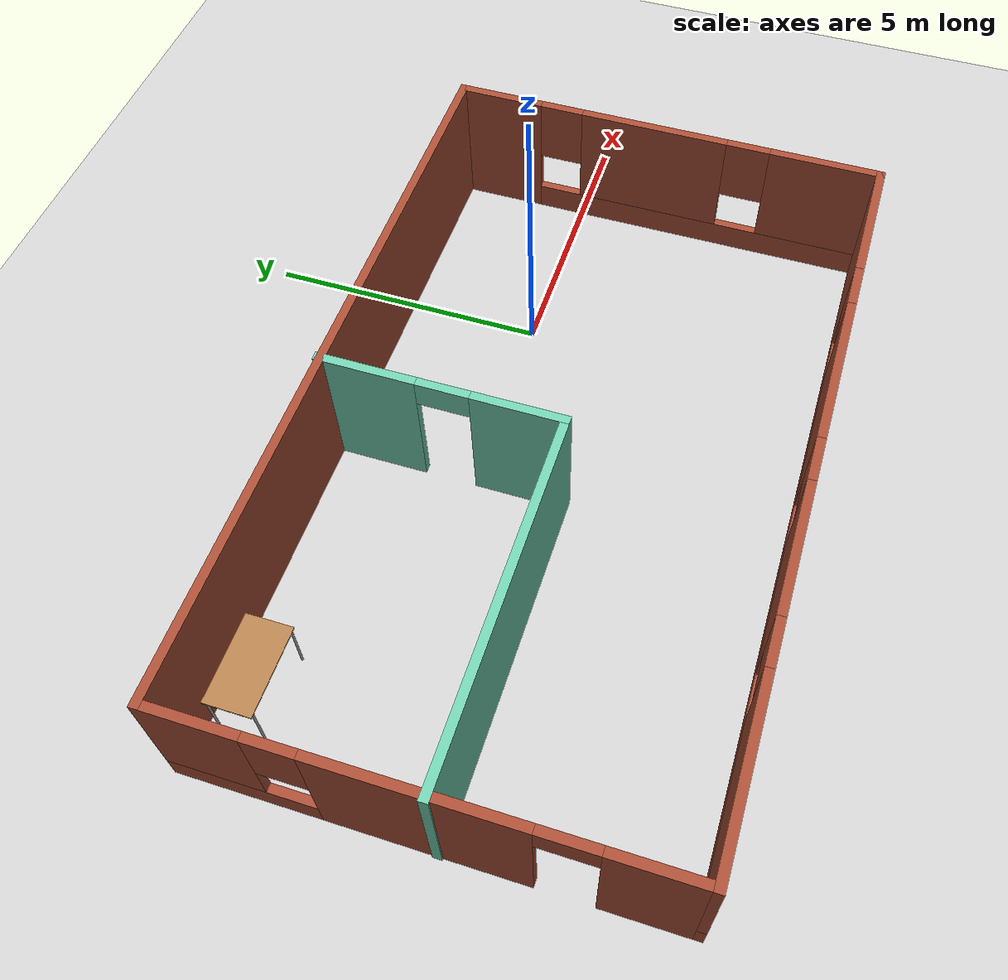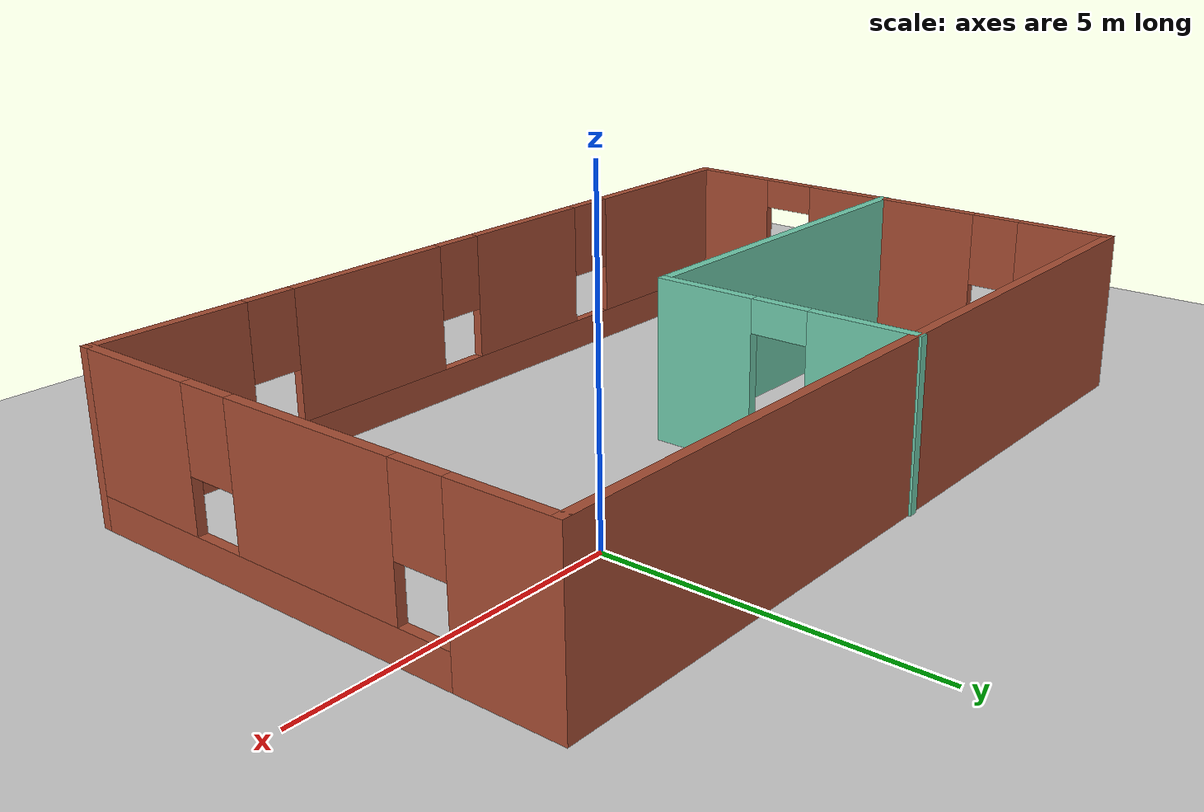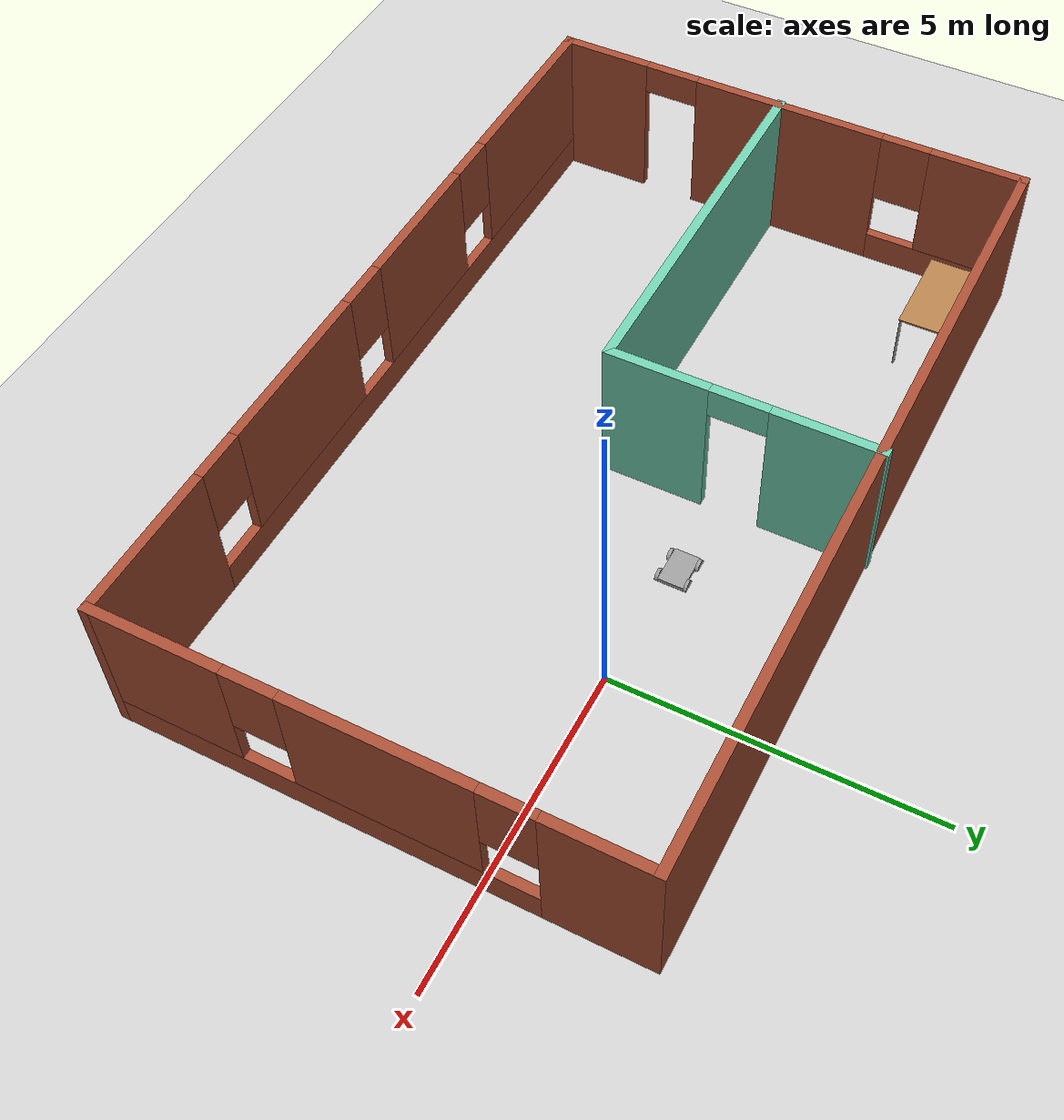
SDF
<sdf version="1.6">
 <world name="default">
  <model name="ground_plane">
   <static>1</static>
   <link name="link">
    <collision name="collision">
     <geometry><plane><normal>0 0 1</normal><size>100 100</size></plane></geometry>
     <surface>
      <contact><collide_bitmask>65535</collide_bitmask></contact>
      <friction><ode><mu>100</mu><mu2>50</mu2></ode></friction>
     </surface>
    </collision>
    <visual name="visual">
     <cast_shadows>0</cast_shadows>
     <geometry><plane><normal>0 0 1</normal><size>100 100</size></plane></geometry>
     <material>
      <script><uri>file://media/materials/scripts/gazebo.material</uri><name>Gazebo/Grey</name></script>
     </material>
    </visual>
   </link>
  </model>
  <model name="building">
   <pose>-3.06518 -1.50242 0 0 -0 0</pose>
   <link name="Wall_10">
    <collision name="Wall_10_Collision">
     <geometry><box><size>6.25 0.15 2.5</size></box></geometry>
     <pose>0 0 1.25 0 -0 0</pose>
    </collision>
    <visual name="Wall_10_Visual">
     <pose>0 0 1.25 0 -0 0</pose>
     <geometry><box><size>6.25 0.15 2.5</size></box></geometry>
     <material>
      <script><uri>file://media/materials/scripts/gazebo.material</uri><name>Gazebo/Grey</name></script>
      <ambient>0.435294 0.796078 0.67451 1</ambient>
     </material>
     <meta><layer>0</layer></meta>
    </visual>
    <pose>-3.38971 -0.157604 0 0 -0 0</pose>
   </link>
   <link name="Wall_11">
    <pose>-0.339708 1.8924 0 0 -0 1.5708</pose>
    <visual name="Wall_11_Visual_0">
     <pose>-1.31015 0 1.25 0 -0 0</pose>
     <geometry><box><size>1.62969 0.15 2.5</size></box></geometry>
     <material>
      <script><uri>file://media/materials/scripts/gazebo.material</uri><name>Gazebo/Grey</name></script>
      <ambient>0.435294 0.796078 0.67451 1</ambient>
     </material>
     <meta><layer>0</layer></meta>
    </visual>
    <collision name="Wall_11_Collision_0">
     <geometry><box><size>1.62969 0.15 2.5</size></box></geometry>
     <pose>-1.31015 0 1.25 0 -0 0</pose>
    </collision>
    <visual name="Wall_11_Visual_1">
     <pose>1.26485 0 1.25 0 -0 0</pose>
     <geometry><box><size>1.72031 0.15 2.5</size></box></geometry>
     <material>
      <script><uri>file://media/materials/scripts/gazebo.material</uri><name>Gazebo/Grey</name></script>
      <ambient>0.435294 0.796078 0.67451 1</ambient>
     </material>
     <meta><layer>0</layer></meta>
    </visual>
    <collision name="Wall_11_Collision_1">
     <geometry><box><size>1.72031 0.15 2.5</size></box></geometry>
     <pose>1.26485 0 1.25 0 -0 0</pose>
    </collision>
    <visual name="Wall_11_Visual_2">
     <pose>-0.045306 0 2.25 0 -0 0</pose>
     <geometry><box><size>0.9 0.15 0.5</size></box></geometry>
     <material>
      <script><uri>file://media/materials/scripts/gazebo.material</uri><name>Gazebo/Grey</name></script>
      <ambient>0.435294 0.796078 0.67451 1</ambient>
     </material>
     <meta><layer>0</layer></meta>
    </visual>
    <collision name="Wall_11_Collision_2">
     <geometry><box><size>0.9 0.15 0.5</size></box></geometry>
     <pose>-0.045306 0 2.25 0 -0 0</pose>
    </collision>
   </link>
   <link name="Wall_2">
    <collision name="Wall_2_Collision">
     <geometry><box><size>13 0.15 2.5</size></box></geometry>
     <pose>0 0 1.25 0 -0 0</pose>
    </collision>
    <visual name="Wall_2_Visual">
     <pose>0 0 1.25 0 -0 0</pose>
     <geometry><box><size>13 0.15 2.5</size></box></geometry>
     <material>
      <script><uri>file://media/materials/scripts/gazebo.material</uri><name>Gazebo/Bricks</name></script>
      <ambient>1 1 1 1</ambient>
     </material>
     <meta><layer>0</layer></meta>
    </visual>
    <pose>0.014707 3.9076 0 0 -0 0</pose>
   </link>
   <link name="Wall_3">
    <pose>6.43971 -0.017396 0 0 0 -1.5708</pose>
    <visual name="Wall_3_Visual_0">
     <pose>-3.19224 0 1.25 0 -0 0</pose>
     <geometry><box><size>1.61551 0.15 2.5</size></box></geometry>
     <material>
      <script><uri>file://media/materials/scripts/gazebo.material</uri><name>Gazebo/Bricks</name></script>
      <ambient>1 1 1 1</ambient>
     </material>
     <meta><layer>0</layer></meta>
    </visual>
    <collision name="Wall_3_Collision_0">
     <geometry><box><size>1.61551 0.15 2.5</size></box></geometry>
     <pose>-3.19224 0 1.25 0 -0 0</pose>
    </collision>
    <visual name="Wall_3_Visual_1">
     <pose>0.807757 0 0.25 0 -0 0</pose>
     <geometry><box><size>6.38449 0.15 0.5</size></box></geometry>
     <material>
      <script><uri>file://media/materials/scripts/gazebo.material</uri><name>Gazebo/Bricks</name></script>
      <ambient>1 1 1 1</ambient>
     </material>
     <meta><layer>0</layer></meta>
    </visual>
    <collision name="Wall_3_Collision_1">
     <geometry><box><size>6.38449 0.15 0.5</size></box></geometry>
     <pose>0.807757 0 0.25 0 -0 0</pose>
    </collision>
    <visual name="Wall_3_Visual_2">
     <pose>-0.224486 0 1.5 0 -0 0</pose>
     <geometry><box><size>2.72 0.15 2</size></box></geometry>
     <material>
      <script><uri>file://media/materials/scripts/gazebo.material</uri><name>Gazebo/Bricks</name></script>
      <ambient>1 1 1 1</ambient>
     </material>
     <meta><layer>0</layer></meta>
    </visual>
    <collision name="Wall_3_Collision_2">
     <geometry><box><size>2.72 0.15 2</size></box></geometry>
     <pose>-0.224486 0 1.5 0 -0 0</pose>
    </collision>
    <visual name="Wall_3_Visual_3">
     <pose>2.96776 0 1.5 0 -0 0</pose>
     <geometry><box><size>2.06449 0.15 2</size></box></geometry>
     <material>
      <script><uri>file://media/materials/scripts/gazebo.material</uri><name>Gazebo/Bricks</name></script>
      <ambient>1 1 1 1</ambient>
     </material>
     <meta><layer>0</layer></meta>
    </visual>
    <collision name="Wall_3_Collision_3">
     <geometry><box><size>2.06449 0.15 2</size></box></geometry>
     <pose>2.96776 0 1.5 0 -0 0</pose>
    </collision>
    <visual name="Wall_3_Visual_4">
     <pose>-1.98449 0 1.9 0 -0 0</pose>
     <geometry><box><size>0.8 0.15 1.2</size></box></geometry>
     <material>
      <script><uri>file://media/materials/scripts/gazebo.material</uri><name>Gazebo/Bricks</name></script>
      <ambient>1 1 1 1</ambient>
     </material>
     <meta><layer>0</layer></meta>
    </visual>
    <collision name="Wall_3_Collision_4">
     <geometry><box><size>0.8 0.15 1.2</size></box></geometry>
     <pose>-1.98449 0 1.9 0 -0 0</pose>
    </collision>
    <visual name="Wall_3_Visual_5">
     <pose>1.53551 0 1.9 0 -0 0</pose>
     <geometry><box><size>0.8 0.15 1.2</size></box></geometry>
     <material>
      <script><uri>file://media/materials/scripts/gazebo.material</uri><name>Gazebo/Bricks</name></script>
      <ambient>1 1 1 1</ambient>
     </material>
     <meta><layer>0</layer></meta>
    </visual>
    <collision name="Wall_3_Collision_5">
     <geometry><box><size>0.8 0.15 1.2</size></box></geometry>
     <pose>1.53551 0 1.9 0 -0 0</pose>
    </collision>
   </link>
   <link name="Wall_4">
    <pose>0.014707 -3.9424 0 0 -0 3.14159</pose>
    <visual name="Wall_4_Visual_0">
     <pose>-5.29023 0 1.25 0 -0 0</pose>
     <geometry><box><size>2.41954 0.15 2.5</size></box></geometry>
     <material>
      <script><uri>file://media/materials/scripts/gazebo.material</uri><name>Gazebo/Bricks</name></script>
      <ambient>1 1 1 1</ambient>
     </material>
     <meta><layer>0</layer></meta>
    </visual>
    <collision name="Wall_4_Collision_0">
     <geometry><box><size>2.41954 0.15 2.5</size></box></geometry>
     <pose>-5.29023 0 1.25 0 -0 0</pose>
    </collision>
    <visual name="Wall_4_Visual_1">
     <pose>1.20977 0 0.25 0 -0 0</pose>
     <geometry><box><size>10.5805 0.15 0.5</size></box></geometry>
     <material>
      <script><uri>file://media/materials/scripts/gazebo.material</uri><name>Gazebo/Bricks</name></script>
      <ambient>1 1 1 1</ambient>
     </material>
     <meta><layer>0</layer></meta>
    </visual>
    <collision name="Wall_4_Collision_1">
     <geometry><box><size>10.5805 0.15 0.5</size></box></geometry>
     <pose>1.20977 0 0.25 0 -0 0</pose>
    </collision>
    <visual name="Wall_4_Visual_2">
     <pose>-1.88045 0 1.5 0 -0 0</pose>
     <geometry><box><size>2.8 0.15 2</size></box></geometry>
     <material>
      <script><uri>file://media/materials/scripts/gazebo.material</uri><name>Gazebo/Bricks</name></script>
      <ambient>1 1 1 1</ambient>
     </material>
     <meta><layer>0</layer></meta>
    </visual>
    <collision name="Wall_4_Collision_2">
     <geometry><box><size>2.8 0.15 2</size></box></geometry>
     <pose>-1.88045 0 1.5 0 -0 0</pose>
    </collision>
    <visual name="Wall_4_Visual_3">
     <pose>1.47955 0 1.5 0 -0 0</pose>
     <geometry><box><size>2.32 0.15 2</size></box></geometry>
     <material>
      <script><uri>file://media/materials/scripts/gazebo.material</uri><name>Gazebo/Bricks</name></script>
      <ambient>1 1 1 1</ambient>
     </material>
     <meta><layer>0</layer></meta>
    </visual>
    <collision name="Wall_4_Collision_3">
     <geometry><box><size>2.32 0.15 2</size></box></geometry>
     <pose>1.47955 0 1.5 0 -0 0</pose>
    </collision>
    <visual name="Wall_4_Visual_4">
     <pose>4.96977 0 1.5 0 -0 0</pose>
     <geometry><box><size>3.06046 0.15 2</size></box></geometry>
     <material>
      <script><uri>file://media/materials/scripts/gazebo.material</uri><name>Gazebo/Bricks</name></script>
      <ambient>1 1 1 1</ambient>
     </material>
     <meta><layer>0</layer></meta>
    </visual>
    <collision name="Wall_4_Collision_4">
     <geometry><box><size>3.06046 0.15 2</size></box></geometry>
     <pose>4.96977 0 1.5 0 -0 0</pose>
    </collision>
    <visual name="Wall_4_Visual_5">
     <pose>-3.68045 0 1.9 0 -0 0</pose>
     <geometry><box><size>0.8 0.15 1.2</size></box></geometry>
     <material>
      <script><uri>file://media/materials/scripts/gazebo.material</uri><name>Gazebo/Bricks</name></script>
      <ambient>1 1 1 1</ambient>
     </material>
     <meta><layer>0</layer></meta>
    </visual>
    <collision name="Wall_4_Collision_5">
     <geometry><box><size>0.8 0.15 1.2</size></box></geometry>
     <pose>-3.68045 0 1.9 0 -0 0</pose>
    </collision>
    <visual name="Wall_4_Visual_6">
     <pose>-0.080455 0 1.9 0 -0 0</pose>
     <geometry><box><size>0.8 0.15 1.2</size></box></geometry>
     <material>
      <script><uri>file://media/materials/scripts/gazebo.material</uri><name>Gazebo/Bricks</name></script>
      <ambient>1 1 1 1</ambient>
     </material>
     <meta><layer>0</layer></meta>
    </visual>
    <collision name="Wall_4_Collision_6">
     <geometry><box><size>0.8 0.15 1.2</size></box></geometry>
     <pose>-0.080455 0 1.9 0 -0 0</pose>
    </collision>
    <visual name="Wall_4_Visual_7">
     <pose>3.03954 0 1.9 0 -0 0</pose>
     <geometry><box><size>0.8 0.15 1.2</size></box></geometry>
     <material>
      <script><uri>file://media/materials/scripts/gazebo.material</uri><name>Gazebo/Bricks</name></script>
      <ambient>1 1 1 1</ambient>
     </material>
     <meta><layer>0</layer></meta>
    </visual>
    <collision name="Wall_4_Collision_7">
     <geometry><box><size>0.8 0.15 1.2</size></box></geometry>
     <pose>3.03954 0 1.9 0 -0 0</pose>
    </collision>
   </link>
   <link name="Wall_5">
    <pose>-6.41029 -0.017396 0 0 -0 1.5708</pose>
    <visual name="Wall_5_Visual_0">
     <pose>-3.23276 0 1.25 0 -0 0</pose>
     <geometry><box><size>1.53449 0.15 2.5</size></box></geometry>
     <material>
      <script><uri>file://media/materials/scripts/gazebo.material</uri><name>Gazebo/Bricks</name></script>
      <ambient>1 1 1 1</ambient>
     </material>
     <meta><layer>0</layer></meta>
    </visual>
    <collision name="Wall_5_Collision_0">
     <geometry><box><size>1.53449 0.15 2.5</size></box></geometry>
     <pose>-3.23276 0 1.25 0 -0 0</pose>
    </collision>
    <visual name="Wall_5_Visual_1">
     <pose>0.029486 0 1.25 0 -0 0</pose>
     <geometry><box><size>3.19 0.15 2.5</size></box></geometry>
     <material>
      <script><uri>file://media/materials/scripts/gazebo.material</uri><name>Gazebo/Bricks</name></script>
      <ambient>1 1 1 1</ambient>
     </material>
     <meta><layer>0</layer></meta>
    </visual>
    <collision name="Wall_5_Collision_1">
     <geometry><box><size>3.19 0.15 2.5</size></box></geometry>
     <pose>0.029486 0 1.25 0 -0 0</pose>
    </collision>
    <visual name="Wall_5_Visual_2">
     <pose>2.81224 0 0.25 0 -0 0</pose>
     <geometry><box><size>2.37551 0.15 0.5</size></box></geometry>
     <material>
      <script><uri>file://media/materials/scripts/gazebo.material</uri><name>Gazebo/Bricks</name></script>
      <ambient>1 1 1 1</ambient>
     </material>
     <meta><layer>0</layer></meta>
    </visual>
    <collision name="Wall_5_Collision_2">
     <geometry><box><size>2.37551 0.15 0.5</size></box></geometry>
     <pose>2.81224 0 0.25 0 -0 0</pose>
    </collision>
    <visual name="Wall_5_Visual_3">
     <pose>3.21224 0 1.5 0 -0 0</pose>
     <geometry><box><size>1.57551 0.15 2</size></box></geometry>
     <material>
      <script><uri>file://media/materials/scripts/gazebo.material</uri><name>Gazebo/Bricks</name></script>
      <ambient>1 1 1 1</ambient>
     </material>
     <meta><layer>0</layer></meta>
    </visual>
    <collision name="Wall_5_Collision_3">
     <geometry><box><size>1.57551 0.15 2</size></box></geometry>
     <pose>3.21224 0 1.5 0 -0 0</pose>
    </collision>
    <visual name="Wall_5_Visual_4">
     <pose>2.02449 0 1.9 0 -0 0</pose>
     <geometry><box><size>0.8 0.15 1.2</size></box></geometry>
     <material>
      <script><uri>file://media/materials/scripts/gazebo.material</uri><name>Gazebo/Bricks</name></script>
      <ambient>1 1 1 1</ambient>
     </material>
     <meta><layer>0</layer></meta>
    </visual>
    <collision name="Wall_5_Collision_4">
     <geometry><box><size>0.8 0.15 1.2</size></box></geometry>
     <pose>2.02449 0 1.9 0 -0 0</pose>
    </collision>
    <visual name="Wall_5_Visual_5">
     <pose>-2.01551 0 2.25 0 -0 0</pose>
     <geometry><box><size>0.9 0.15 0.5</size></box></geometry>
     <material>
      <script><uri>file://media/materials/scripts/gazebo.material</uri><name>Gazebo/Bricks</name></script>
      <ambient>1 1 1 1</ambient>
     </material>
     <meta><layer>0</layer></meta>
    </visual>
    <collision name="Wall_5_Collision_5">
     <geometry><box><size>0.9 0.15 0.5</size></box></geometry>
     <pose>-2.01551 0 2.25 0 -0 0</pose>
    </collision>
   </link>
   <static>1</static>
  </model>
  <model name="table">
   <static>1</static>
   <link name="link">
    <collision name="surface">
     <pose>0 0 1 0 -0 0</pose>
     <geometry><box><size>1.5 0.8 0.03</size></box></geometry>
     <surface><friction><ode><mu>0.6</mu><mu2>0.6</mu2></ode></friction></surface>
    </collision>
    <visual name="visual1">
     <pose>0 0 1 0 -0 0</pose>
     <geometry><box><size>1.5 0.8 0.03</size></box></geometry>
     <material>
      <script><uri>file://media/materials/scripts/gazebo.material</uri><name>Gazebo/Wood</name></script>
     </material>
    </visual>
    <collision name="front_left_leg">
     <pose>0.68 0.38 0.5 0 -0 0</pose>
     <geometry><cylinder><radius>0.02</radius><length>1</length></cylinder></geometry>
    </collision>
    <visual name="front_left_leg">
     <pose>0.68 0.38 0.5 0 -0 0</pose>
     <geometry><cylinder><radius>0.02</radius><length>1</length></cylinder></geometry>
     <material>
      <script><uri>file://media/materials/scripts/gazebo.material</uri><name>Gazebo/Grey</name></script>
     </material>
    </visual>
    <collision name="front_right_leg">
     <pose>0.68 -0.38 0.5 0 -0 0</pose>
     <geometry><cylinder><radius>0.02</radius><length>1</length></cylinder></geometry>
    </collision>
    <visual name="front_right_leg">
     <pose>0.68 -0.38 0.5 0 -0 0</pose>
     <geometry><cylinder><radius>0.02</radius><length>1</length></cylinder></geometry>
     <material>
      <script><uri>file://media/materials/scripts/gazebo.material</uri><name>Gazebo/Grey</name></script>
     </material>
    </visual>
    <collision name="back_right_leg">
     <pose>-0.68 -0.38 0.5 0 -0 0</pose>
     <geometry><cylinder><radius>0.02</radius><length>1</length></cylinder></geometry>
    </collision>
    <visual name="back_right_leg">
     <pose>-0.68 -0.38 0.5 0 -0 0</pose>
     <geometry><cylinder><radius>0.02</radius><length>1</length></cylinder></geometry>
     <material>
      <script><uri>file://media/materials/scripts/gazebo.material</uri><name>Gazebo/Grey</name></script>
     </material>
    </visual>
    <collision name="back_left_leg">
     <pose>-0.68 0.38 0.5 0 -0 0</pose>
     <geometry><cylinder><radius>0.02</radius><length>1</length></cylinder></geometry>
    </collision>
    <visual name="back_left_leg">
     <pose>-0.68 0.38 0.5 0 -0 0</pose>
     <geometry><cylinder><radius>0.02</radius><length>1</length></cylinder></geometry>
     <material>
      <script><uri>file://media/materials/scripts/gazebo.material</uri><name>Gazebo/Grey</name></script>
     </material>
    </visual>
   </link>
   <pose>-8.01169 1.79925 0 0 -0 0</pose>
  </model>
  <model name="robot">
   <link name="link_0">
    <inertial>
     <mass>1</mass>
     <inertia>
      <ixx>0.166667</ixx>
      <ixy>0</ixy>
      <ixz>0</ixz>
      <iyy>0.166667</iyy>
      <iyz>0</iyz>
      <izz>0.166667</izz>
     </inertia>
    </inertial>
    <visual name="visual">
     <geometry><box><size>0.6 0.4 0.1</size></box></geometry>
     <material>
      <lighting>1</lighting>
      <script><uri>file://media/materials/scripts/gazebo.material</uri><name>Gazebo/Grey</name></script>
      <shader type="pixel"><normal_map>__default__</normal_map></shader>
      <ambient>0.3 0.3 0.3 1</ambient>
      <diffuse>0.7 0.7 0.7 1</diffuse>
      <specular>0.01 0.01 0.01 1</specular>
      <emissive>0 0 0 1</emissive>
     </material>
    </visual>
    <collision name="collision">
     <geometry><box><size>0.6 0.4 0.1</size></box></geometry>
     <surface>
      <friction>
       <ode><mu>1</mu><mu2>1</mu2><fdir1>0 0 0</fdir1><slip1>0</slip1><slip2>0</slip2></ode>
       <torsional>
        <coefficient>1</coefficient>
        <patch_radius>0</patch_radius>
        <surface_radius>0</surface_radius>
        <use_patch_radius>1</use_patch_radius>
        <ode><slip>0</slip></ode>
       </torsional>
      </friction>
      <bounce><restitution_coefficient>0</restitution_coefficient><threshold>1e+06</threshold></bounce>
      <contact>
       <collide_without_contact>0</collide_without_contact>
       <collide_without_contact_bitmask>1</collide_without_contact_bitmask>
       <collide_bitmask>1</collide_bitmask>
       <ode>
        <soft_cfm>0</soft_cfm>
        <soft_erp>0.2</soft_erp>
        <kp>1e+13</kp>
        <kd>1</kd>
        <max_vel>0.01</max_vel>
        <min_depth>0</min_depth>
       </ode>
       <bullet>
        <split_impulse>1</split_impulse>
        <split_impulse_penetration_threshold>-0.01</split_impulse_penetration_threshold>
        <soft_cfm>0</soft_cfm>
        <soft_erp>0.2</soft_erp>
        <kp>1e+13</kp>
        <kd>1</kd>
       </bullet>
      </contact>
     </surface>
    </collision>
   </link>
   <link name="link_1_clone">
    <pose>-0.2 0.22501 0 0 -0 0</pose>
    <inertial>
     <mass>1</mass>
     <inertia><ixx>0.145833</ixx><ixy>0</ixy><ixz>0</ixz><iyy>0.145833</iyy><iyz>0</iyz><izz>0.125</izz></inertia>
    </inertial>
    <visual name="visual">
     <pose>0 0 0 1.5707 -0 0</pose>
     <geometry><cylinder><radius>0.1</radius><length>0.05</length></cylinder></geometry>
     <material>
      <lighting>1</lighting>
      <script><uri>file://media/materials/scripts/gazebo.material</uri><name>Gazebo/Grey</name></script>
      <shader type="pixel"><normal_map>__default__</normal_map></shader>
      <ambient>0.3 0.3 0.3 1</ambient>
      <diffuse>0.7 0.7 0.7 1</diffuse>
      <specular>0.01 0.01 0.01 1</specular>
      <emissive>0 0 0 1</emissive>
     </material>
    </visual>
    <collision name="collision">
     <pose>0 0 0 1.5707 -0 0</pose>
     <geometry><cylinder><radius>0.1</radius><length>0.05</length></cylinder></geometry>
     <surface>
      <friction>
       <ode><mu>1</mu><mu2>1</mu2><fdir1>0 0 0</fdir1><slip1>0</slip1><slip2>0</slip2></ode>
       <torsional>
        <coefficient>1</coefficient>
        <patch_radius>0</patch_radius>
        <surface_radius>0</surface_radius>
        <use_patch_radius>1</use_patch_radius>
        <ode><slip>0</slip></ode>
       </torsional>
      </friction>
      <bounce><restitution_coefficient>0</restitution_coefficient><threshold>1e+06</threshold></bounce>
      <contact>
       <collide_without_contact>0</collide_without_contact>
       <collide_without_contact_bitmask>1</collide_without_contact_bitmask>
       <collide_bitmask>1</collide_bitmask>
       <ode>
        <soft_cfm>0</soft_cfm>
        <soft_erp>0.2</soft_erp>
        <kp>1e+13</kp>
        <kd>1</kd>
        <max_vel>0.01</max_vel>
        <min_depth>0</min_depth>
       </ode>
       <bullet>
        <split_impulse>1</split_impulse>
        <split_impulse_penetration_threshold>-0.01</split_impulse_penetration_threshold>
        <soft_cfm>0</soft_cfm>
        <soft_erp>0.2</soft_erp>
        <kp>1e+13</kp>
        <kd>1</kd>
       </bullet>
      </contact>
     </surface>
    </collision>
   </link>
   <link name="link_1_clone_0">
    <pose>0.2 -0.22501 0 0 -0 0</pose>
    <inertial>
     <mass>1</mass>
     <inertia><ixx>0.145833</ixx><ixy>0</ixy><ixz>0</ixz><iyy>0.145833</iyy><iyz>0</iyz><izz>0.125</izz></inertia>
    </inertial>
    <visual name="visual">
     <pose>0 0 0 1.5707 -0 0</pose>
     <geometry><cylinder><radius>0.1</radius><length>0.05</length></cylinder></geometry>
     <material>
      <lighting>1</lighting>
      <script><uri>file://media/materials/scripts/gazebo.material</uri><name>Gazebo/Grey</name></script>
      <shader type="pixel"><normal_map>__default__</normal_map></shader>
      <ambient>0.3 0.3 0.3 1</ambient>
      <diffuse>0.7 0.7 0.7 1</diffuse>
      <specular>0.01 0.01 0.01 1</specular>
      <emissive>0 0 0 1</emissive>
     </material>
    </visual>
    <collision name="collision">
     <pose>0 0 0 1.5707 -0 0</pose>
     <geometry><cylinder><radius>0.1</radius><length>0.05</length></cylinder></geometry>
     <surface>
      <friction>
       <ode><mu>1</mu><mu2>1</mu2><fdir1>0 0 0</fdir1><slip1>0</slip1><slip2>0</slip2></ode>
       <torsional>
        <coefficient>1</coefficient>
        <patch_radius>0</patch_radius>
        <surface_radius>0</surface_radius>
        <use_patch_radius>1</use_patch_radius>
        <ode><slip>0</slip></ode>
       </torsional>
      </friction>
      <bounce><restitution_coefficient>0</restitution_coefficient><threshold>1e+06</threshold></bounce>
      <contact>
       <collide_without_contact>0</collide_without_contact>
       <collide_without_contact_bitmask>1</collide_without_contact_bitmask>
       <collide_bitmask>1</collide_bitmask>
       <ode>
        <soft_cfm>0</soft_cfm>
        <soft_erp>0.2</soft_erp>
        <kp>1e+13</kp>
        <kd>1</kd>
        <max_vel>0.01</max_vel>
        <min_depth>0</min_depth>
       </ode>
       <bullet>
        <split_impulse>1</split_impulse>
        <split_impulse_penetration_threshold>-0.01</split_impulse_penetration_threshold>
        <soft_cfm>0</soft_cfm>
        <soft_erp>0.2</soft_erp>
        <kp>1e+13</kp>
        <kd>1</kd>
       </bullet>
      </contact>
     </surface>
    </collision>
   </link>
   <link name="link_1_clone_1">
    <pose>0.2 0.22501 0 0 -0 0</pose>
    <inertial>
     <mass>1</mass>
     <inertia><ixx>0.145833</ixx><ixy>0</ixy><ixz>0</ixz><iyy>0.145833</iyy><iyz>0</iyz><izz>0.125</izz></inertia>
    </inertial>
    <visual name="visual">
     <pose>0 0 0 1.5707 -0 0</pose>
     <geometry><cylinder><radius>0.1</radius><length>0.05</length></cylinder></geometry>
     <material>
      <lighting>1</lighting>
      <script><uri>file://media/materials/scripts/gazebo.material</uri><name>Gazebo/Grey</name></script>
      <shader type="pixel"><normal_map>__default__</normal_map></shader>
      <ambient>0.3 0.3 0.3 1</ambient>
      <diffuse>0.7 0.7 0.7 1</diffuse>
      <specular>0.01 0.01 0.01 1</specular>
      <emissive>0 0 0 1</emissive>
     </material>
    </visual>
    <collision name="collision">
     <pose>0 0 0 1.5707 -0 0</pose>
     <geometry><cylinder><radius>0.1</radius><length>0.05</length></cylinder></geometry>
     <surface>
      <friction>
       <ode><mu>1</mu><mu2>1</mu2><fdir1>0 0 0</fdir1><slip1>0</slip1><slip2>0</slip2></ode>
       <torsional>
        <coefficient>1</coefficient>
        <patch_radius>0</patch_radius>
        <surface_radius>0</surface_radius>
        <use_patch_radius>1</use_patch_radius>
        <ode><slip>0</slip></ode>
       </torsional>
      </friction>
      <bounce><restitution_coefficient>0</restitution_coefficient><threshold>1e+06</threshold></bounce>
      <contact>
       <collide_without_contact>0</collide_without_contact>
       <collide_without_contact_bitmask>1</collide_without_contact_bitmask>
       <collide_bitmask>1</collide_bitmask>
       <ode>
        <soft_cfm>0</soft_cfm>
        <soft_erp>0.2</soft_erp>
        <kp>1e+13</kp>
        <kd>1</kd>
        <max_vel>0.01</max_vel>
        <min_depth>0</min_depth>
       </ode>
       <bullet>
        <split_impulse>1</split_impulse>
        <split_impulse_penetration_threshold>-0.01</split_impulse_penetration_threshold>
        <soft_cfm>0</soft_cfm>
        <soft_erp>0.2</soft_erp>
        <kp>1e+13</kp>
        <kd>1</kd>
       </bullet>
      </contact>
     </surface>
    </collision>
   </link>
   <link name="link_1_clone_1_clone">
    <pose>-0.2 -0.22501 0 0 -0 0</pose>
    <inertial>
     <mass>1</mass>
     <inertia><ixx>0.145833</ixx><ixy>0</ixy><ixz>0</ixz><iyy>0.145833</iyy><iyz>0</iyz><izz>0.125</izz></inertia>
    </inertial>
    <visual name="visual">
     <pose>0 0 0 1.5707 -0 0</pose>
     <geometry><cylinder><radius>0.1</radius><length>0.05</length></cylinder></geometry>
     <material>
      <lighting>1</lighting>
      <script><uri>file://media/materials/scripts/gazebo.material</uri><name>Gazebo/Grey</name></script>
      <shader type="pixel"><normal_map>__default__</normal_map></shader>
      <ambient>0.3 0.3 0.3 1</ambient>
      <diffuse>0.7 0.7 0.7 1</diffuse>
      <specular>0.01 0.01 0.01 1</specular>
      <emissive>0 0 0 1</emissive>
     </material>
    </visual>
    <collision name="collision">
     <pose>0 0 0 1.5707 -0 0</pose>
     <geometry><cylinder><radius>0.1</radius><length>0.05</length></cylinder></geometry>
     <surface>
      <friction>
       <ode><mu>1</mu><mu2>1</mu2><fdir1>0 0 0</fdir1><slip1>0</slip1><slip2>0</slip2></ode>
       <torsional>
        <coefficient>1</coefficient>
        <patch_radius>0</patch_radius>
        <surface_radius>0</surface_radius>
        <use_patch_radius>1</use_patch_radius>
        <ode><slip>0</slip></ode>
       </torsional>
      </friction>
      <bounce><restitution_coefficient>0</restitution_coefficient><threshold>1e+06</threshold></bounce>
      <contact>
       <collide_without_contact>0</collide_without_contact>
       <collide_without_contact_bitmask>1</collide_without_contact_bitmask>
       <collide_bitmask>1</collide_bitmask>
       <ode>
        <soft_cfm>0</soft_cfm>
        <soft_erp>0.2</soft_erp>
        <kp>1e+13</kp>
        <kd>1</kd>
        <max_vel>0.01</max_vel>
        <min_depth>0</min_depth>
       </ode>
       <bullet>
        <split_impulse>1</split_impulse>
        <split_impulse_penetration_threshold>-0.01</split_impulse_penetration_threshold>
        <soft_cfm>0</soft_cfm>
        <soft_erp>0.2</soft_erp>
        <kp>1e+13</kp>
        <kd>1</kd>
       </bullet>
      </contact>
     </surface>
    </collision>
   </link>
   <joint name="link_0_JOINT_0" type="revolute">
    <parent>link_0</parent>
    <child>link_1_clone_1</child>
    <axis>
     <xyz>0 0 1</xyz>
     <use_parent_model_frame>0</use_parent_model_frame>
     <limit>
      <lower>-1.79769e+308</lower>
      <upper>1.79769e+308</upper>
      <effort>-1</effort>
      <velocity>-1</velocity>
     </limit>
     <dynamics>
      <spring_reference>0</spring_reference>
      <spring_stiffness>0</spring_stiffness>
      <damping>0</damping>
     </dynamics>
    </axis>
    <physics>
     <ode><limit><cfm>0</cfm><erp>0.2</erp></limit><suspension><cfm>0</cfm><erp>0.2</erp></suspension></ode>
    </physics>
   </joint>
   <joint name="link_0_JOINT_1" type="revolute">
    <parent>link_0</parent>
    <child>link_1_clone_0</child>
    <axis>
     <xyz>0 0 1</xyz>
     <use_parent_model_frame>0</use_parent_model_frame>
     <limit>
      <lower>-1.79769e+308</lower>
      <upper>1.79769e+308</upper>
      <effort>-1</effort>
      <velocity>-1</velocity>
     </limit>
     <dynamics>
      <spring_reference>0</spring_reference>
      <spring_stiffness>0</spring_stiffness>
      <damping>0</damping>
      <friction>0</friction>
     </dynamics>
    </axis>
    <physics>
     <ode><limit><cfm>0</cfm><erp>0.2</erp></limit><suspension><cfm>0</cfm><erp>0.2</erp></suspension></ode>
    </physics>
   </joint>
   <joint name="link_0_JOINT_2" type="revolute">
    <parent>link_0</parent>
    <child>link_1_clone</child>
    <axis>
     <xyz>0 0 1</xyz>
     <use_parent_model_frame>0</use_parent_model_frame>
     <limit>
      <lower>-1.79769e+308</lower>
      <upper>1.79769e+308</upper>
      <effort>-1</effort>
      <velocity>-1</velocity>
     </limit>
     <dynamics>
      <spring_reference>0</spring_reference>
      <spring_stiffness>0</spring_stiffness>
      <damping>0</damping>
     </dynamics>
    </axis>
    <physics>
     <ode><limit><cfm>0</cfm><erp>0.2</erp></limit><suspension><cfm>0</cfm><erp>0.2</erp></suspension></ode>
    </physics>
   </joint>
   <joint name="link_0_JOINT_4" type="revolute">
    <parent>link_0</parent>
    <child>link_1_clone_1_clone</child>
    <axis>
     <xyz>0 0 1</xyz>
     <use_parent_model_frame>0</use_parent_model_frame>
     <limit>
      <lower>-1.79769e+308</lower>
      <upper>1.79769e+308</upper>
      <effort>-1</effort>
      <velocity>-1</velocity>
     </limit>
     <dynamics>
      <spring_reference>0</spring_reference>
      <spring_stiffness>0</spring_stiffness>
      <damping>0</damping>
     </dynamics>
    </axis>
    <physics>
     <ode><limit><cfm>0</cfm><erp>0.2</erp></limit><suspension><cfm>0</cfm><erp>0.2</erp></suspension></ode>
    </physics>
   </joint>
   <static>0</static>
   <pose>-2.09746 0.122713 0 0 -0 0</pose>
  </model>
 </world>
</sdf>
